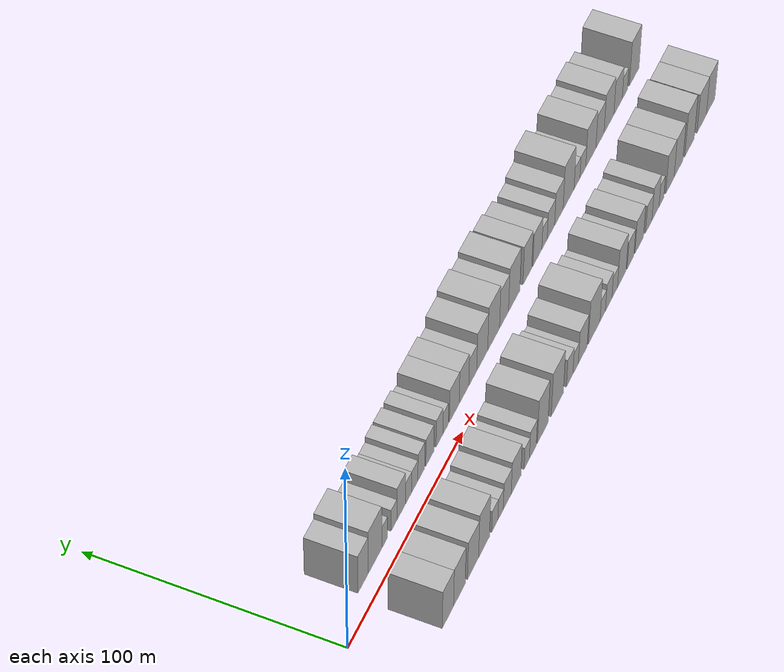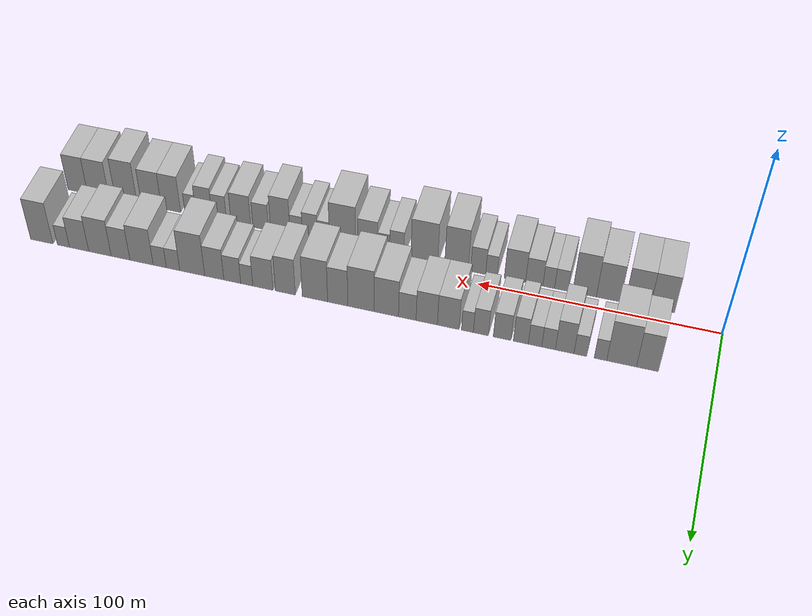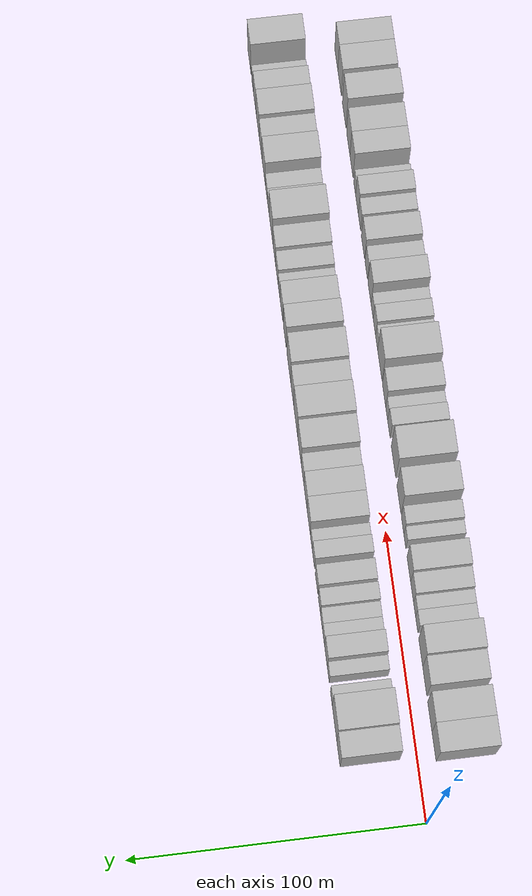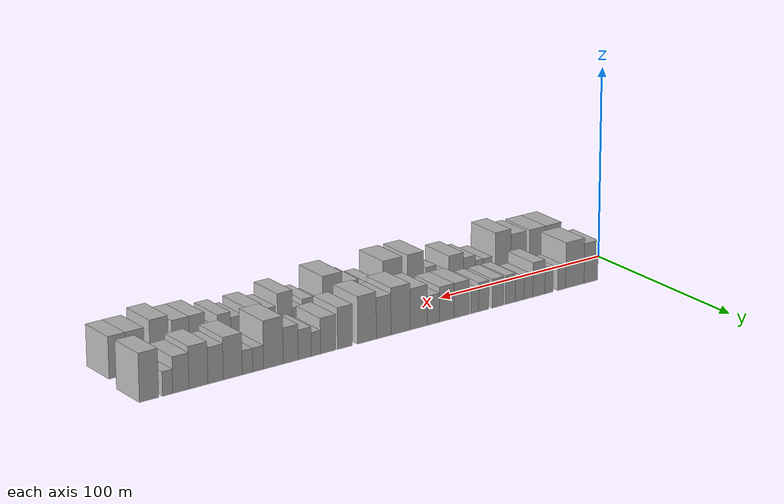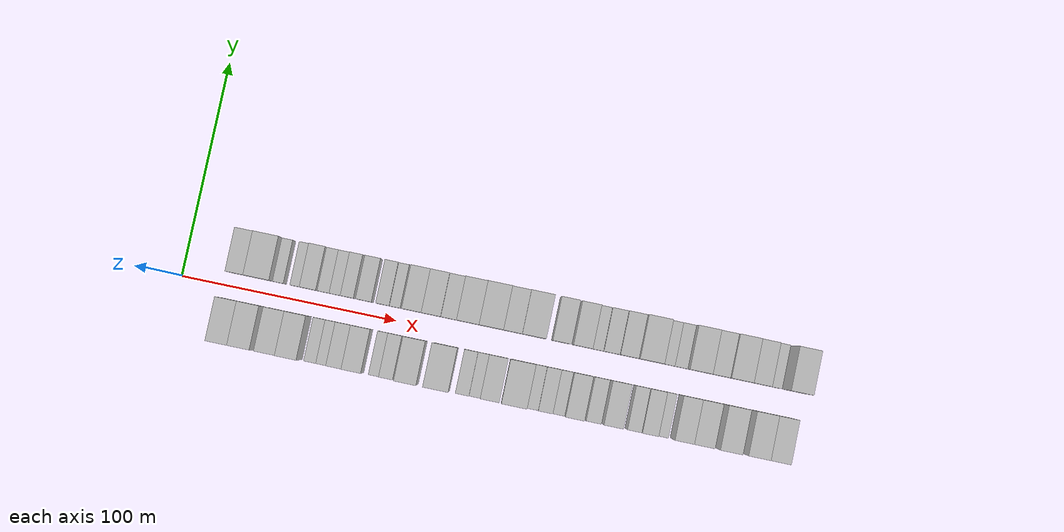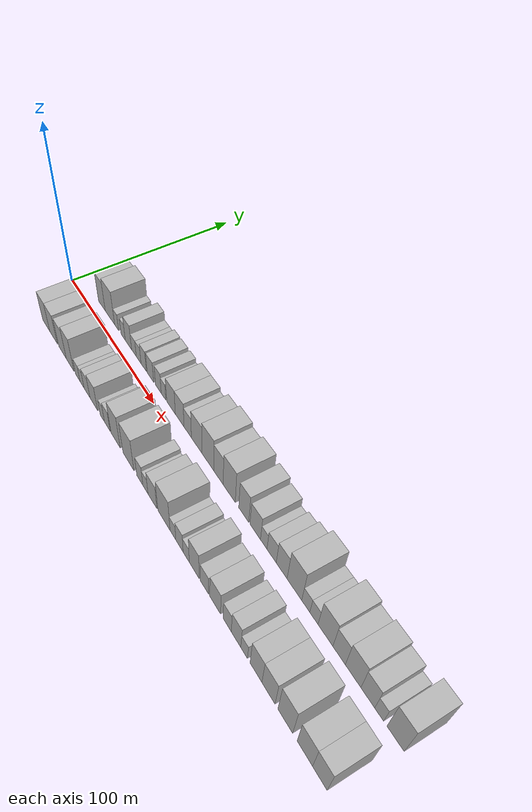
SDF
<sdf version="1.6">
 <world name="default">
  <scene>
   <sky><clouds><speed>12</speed></clouds></sky>
   <ambient>0.4 0.4 0.4 1</ambient>
   <background>0.7 0.7 0.7 1</background>
   <shadows>1</shadows>
  </scene>
  <gravity>0 0 -9.8066</gravity>
  <magnetic_field>6e-06 2.3e-05 -4.2e-05</magnetic_field>
  <physics default="0" name="default_physics" type="ode">
   <ode>
    <solver>
     <type>quick</type>
     <iters>10</iters>
     <sor>1.0</sor>
     <use_dynamic_moi_rescaling>0</use_dynamic_moi_rescaling>
    </solver>
    <constraints>
     <cfm>0</cfm>
     <erp>0.2</erp>
     <contact_max_correcting_vel>100</contact_max_correcting_vel>
     <contact_surface_layer>0.001</contact_surface_layer>
    </constraints>
   </ode>
   <max_step_size>0.004</max_step_size>
   <real_time_factor>1</real_time_factor>
   <real_time_update_rate>250</real_time_update_rate>
  </physics>
  <light name="sun" type="directional">
   <pose>0 0 10 0 0 0</pose>
   <diffuse>0.8 0.8 0.8 1</diffuse>
   <specular>0.2 0.2 0.2 1</specular>
   <attenuation>
    <range>1000</range>
    <constant>0.9</constant>
    <linear>0.01</linear>
    <quadratic>0.001</quadratic>
   </attenuation>
   <direction>-0.5 0.1 -0.9</direction>
  </light>
  <model name="building_1">
   <static>1</static>
   <pose>26.3235 16.0000 0 0.000000 0.000000 1.570796</pose>
   <link name="link">
    <pose>0 0 10.50 0 0 0</pose>
    <collision name="collision"><geometry><box><size>20.0000 8.6469 21.0000</size></box></geometry></collision>
    <visual name="visual">
     <cast_shadows>0</cast_shadows>
     <geometry><box><size>20.0000 8.6469 21.0000</size></box></geometry>
     <material>
      <script>
       <uri>model://HANNAS_wall/materials/scripts</uri>
       <uri>model://HANNAS_wall/materials/textures</uri>
       <name>vrc/HANNAS_wall</name>
      </script>
     </material>
    </visual>
   </link>
  </model>
  <model name="building_2">
   <static>1</static>
   <pose>36.5251 16.0000 0 0.000000 0.000000 1.570796</pose>
   <link name="link">
    <pose>0 0 12.00 0 0 0</pose>
    <collision name="collision"><geometry><box><size>20.0000 11.7564 24.0000</size></box></geometry></collision>
    <visual name="visual">
     <cast_shadows>0</cast_shadows>
     <geometry><box><size>20.0000 11.7564 24.0000</size></box></geometry>
     <material>
      <script>
       <uri>model://HANNAS_wall/materials/scripts</uri>
       <uri>model://HANNAS_wall/materials/textures</uri>
       <name>vrc/HANNAS_wall</name>
      </script>
     </material>
    </visual>
   </link>
  </model>
  <model name="building_3">
   <static>1</static>
   <pose>44.8879 16.0000 0 0.000000 0.000000 1.570796</pose>
   <link name="link">
    <pose>0 0 6.00 0 0 0</pose>
    <collision name="collision"><geometry><box><size>20.0000 4.9692 12.0000</size></box></geometry></collision>
    <visual name="visual">
     <cast_shadows>0</cast_shadows>
     <geometry><box><size>20.0000 4.9692 12.0000</size></box></geometry>
     <material>
      <script>
       <uri>model://HANNAS_wall/materials/scripts</uri>
       <uri>model://HANNAS_wall/materials/textures</uri>
       <name>vrc/HANNAS_wall</name>
      </script>
     </material>
    </visual>
   </link>
  </model>
  <model name="building_4">
   <static>1</static>
   <pose>52.9112 16.0000 0 0.000000 0.000000 1.570796</pose>
   <link name="link">
    <pose>0 0 6.00 0 0 0</pose>
    <collision name="collision"><geometry><box><size>20.0000 5.0774 12.0000</size></box></geometry></collision>
    <visual name="visual">
     <cast_shadows>0</cast_shadows>
     <geometry><box><size>20.0000 5.0774 12.0000</size></box></geometry>
     <material>
      <script>
       <uri>model://HANNAS_wall/materials/scripts</uri>
       <uri>model://HANNAS_wall/materials/textures</uri>
       <name>vrc/HANNAS_wall</name>
      </script>
     </material>
    </visual>
   </link>
  </model>
  <model name="building_5">
   <static>1</static>
   <pose>59.1960 16.0000 0 0.000000 0.000000 1.570796</pose>
   <link name="link">
    <pose>0 0 9.00 0 0 0</pose>
    <collision name="collision"><geometry><box><size>20.0000 7.4921 18.0000</size></box></geometry></collision>
    <visual name="visual">
     <cast_shadows>0</cast_shadows>
     <geometry><box><size>20.0000 7.4921 18.0000</size></box></geometry>
     <material>
      <script>
       <uri>model://HANNAS_wall/materials/scripts</uri>
       <uri>model://HANNAS_wall/materials/textures</uri>
       <name>vrc/HANNAS_wall</name>
      </script>
     </material>
    </visual>
   </link>
  </model>
  <model name="building_6">
   <static>1</static>
   <pose>65.6826 16.0000 0 0.000000 0.000000 1.570796</pose>
   <link name="link">
    <pose>0 0 6.00 0 0 0</pose>
    <collision name="collision"><geometry><box><size>20.0000 5.4810 12.0000</size></box></geometry></collision>
    <visual name="visual">
     <cast_shadows>0</cast_shadows>
     <geometry><box><size>20.0000 5.4810 12.0000</size></box></geometry>
     <material>
      <script>
       <uri>model://HANNAS_wall/materials/scripts</uri>
       <uri>model://HANNAS_wall/materials/textures</uri>
       <name>vrc/HANNAS_wall</name>
      </script>
     </material>
    </visual>
   </link>
  </model>
  <model name="building_7">
   <static>1</static>
   <pose>71.1312 16.0000 0 0.000000 0.000000 1.570796</pose>
   <link name="link">
    <pose>0 0 6.00 0 0 0</pose>
    <collision name="collision"><geometry><box><size>20.0000 5.4163 12.0000</size></box></geometry></collision>
    <visual name="visual">
     <cast_shadows>0</cast_shadows>
     <geometry><box><size>20.0000 5.4163 12.0000</size></box></geometry>
     <material>
      <script>
       <uri>model://HANNAS_wall/materials/scripts</uri>
       <uri>model://HANNAS_wall/materials/textures</uri>
       <name>vrc/HANNAS_wall</name>
      </script>
     </material>
    </visual>
   </link>
  </model>
  <model name="building_8">
   <static>1</static>
   <pose>76.8540 16.0000 0 0.000000 0.000000 1.570796</pose>
   <link name="link">
    <pose>0 0 7.50 0 0 0</pose>
    <collision name="collision"><geometry><box><size>20.0000 6.0293 15.0000</size></box></geometry></collision>
    <visual name="visual">
     <cast_shadows>0</cast_shadows>
     <geometry><box><size>20.0000 6.0293 15.0000</size></box></geometry>
     <material>
      <script>
       <uri>model://HANNAS_wall/materials/scripts</uri>
       <uri>model://HANNAS_wall/materials/textures</uri>
       <name>vrc/HANNAS_wall</name>
      </script>
     </material>
    </visual>
   </link>
  </model>
  <model name="building_9">
   <static>1</static>
   <pose>84.4614 16.0000 0 0.000000 0.000000 1.570796</pose>
   <link name="link">
    <pose>0 0 7.50 0 0 0</pose>
    <collision name="collision"><geometry><box><size>20.0000 7.1854 15.0000</size></box></geometry></collision>
    <visual name="visual">
     <cast_shadows>0</cast_shadows>
     <geometry><box><size>20.0000 7.1854 15.0000</size></box></geometry>
     <material>
      <script>
       <uri>model://HANNAS_wall/materials/scripts</uri>
       <uri>model://HANNAS_wall/materials/textures</uri>
       <name>vrc/HANNAS_wall</name>
      </script>
     </material>
    </visual>
   </link>
  </model>
  <model name="building_10">
   <static>1</static>
   <pose>93.1329 16.0000 0 0.000000 0.000000 1.570796</pose>
   <link name="link">
    <pose>0 0 7.50 0 0 0</pose>
    <collision name="collision"><geometry><box><size>20.0000 6.1577 15.0000</size></box></geometry></collision>
    <visual name="visual">
     <cast_shadows>0</cast_shadows>
     <geometry><box><size>20.0000 6.1577 15.0000</size></box></geometry>
     <material>
      <script>
       <uri>model://HANNAS_wall/materials/scripts</uri>
       <uri>model://HANNAS_wall/materials/textures</uri>
       <name>vrc/HANNAS_wall</name>
      </script>
     </material>
    </visual>
   </link>
  </model>
  <model name="building_11">
   <static>1</static>
   <pose>98.6537 16.0000 0 0.000000 0.000000 1.570796</pose>
   <link name="link">
    <pose>0 0 6.00 0 0 0</pose>
    <collision name="collision"><geometry><box><size>20.0000 4.8839 12.0000</size></box></geometry></collision>
    <visual name="visual">
     <cast_shadows>0</cast_shadows>
     <geometry><box><size>20.0000 4.8839 12.0000</size></box></geometry>
     <material>
      <script>
       <uri>model://HANNAS_wall/materials/scripts</uri>
       <uri>model://HANNAS_wall/materials/textures</uri>
       <name>vrc/HANNAS_wall</name>
      </script>
     </material>
    </visual>
   </link>
  </model>
  <model name="building_12">
   <static>1</static>
   <pose>106.5633 16.0000 0 0.000000 0.000000 1.570796</pose>
   <link name="link">
    <pose>0 0 9.00 0 0 0</pose>
    <collision name="collision"><geometry><box><size>20.0000 8.9352 18.0000</size></box></geometry></collision>
    <visual name="visual">
     <cast_shadows>0</cast_shadows>
     <geometry><box><size>20.0000 8.9352 18.0000</size></box></geometry>
     <material>
      <script>
       <uri>model://HANNAS_wall/materials/scripts</uri>
       <uri>model://HANNAS_wall/materials/textures</uri>
       <name>vrc/HANNAS_wall</name>
      </script>
     </material>
    </visual>
   </link>
  </model>
  <model name="building_13">
   <static>1</static>
   <pose>115.4591 16.0000 0 0.000000 0.000000 1.570796</pose>
   <link name="link">
    <pose>0 0 9.00 0 0 0</pose>
    <collision name="collision"><geometry><box><size>20.0000 8.8563 18.0000</size></box></geometry></collision>
    <visual name="visual">
     <cast_shadows>0</cast_shadows>
     <geometry><box><size>20.0000 8.8563 18.0000</size></box></geometry>
     <material>
      <script>
       <uri>model://HANNAS_wall/materials/scripts</uri>
       <uri>model://HANNAS_wall/materials/textures</uri>
       <name>vrc/HANNAS_wall</name>
      </script>
     </material>
    </visual>
   </link>
  </model>
  <model name="building_14">
   <static>1</static>
   <pose>123.5404 16.0000 0 0.000000 0.000000 1.570796</pose>
   <link name="link">
    <pose>0 0 7.50 0 0 0</pose>
    <collision name="collision"><geometry><box><size>20.0000 7.3064 15.0000</size></box></geometry></collision>
    <visual name="visual">
     <cast_shadows>0</cast_shadows>
     <geometry><box><size>20.0000 7.3064 15.0000</size></box></geometry>
     <material>
      <script>
       <uri>model://HANNAS_wall/materials/scripts</uri>
       <uri>model://HANNAS_wall/materials/textures</uri>
       <name>vrc/HANNAS_wall</name>
      </script>
     </material>
    </visual>
   </link>
  </model>
  <model name="building_15">
   <static>1</static>
   <pose>132.3197 16.0000 0 0.000000 0.000000 1.570796</pose>
   <link name="link">
    <pose>0 0 10.50 0 0 0</pose>
    <collision name="collision"><geometry><box><size>20.0000 10.2522 21.0000</size></box></geometry></collision>
    <visual name="visual">
     <cast_shadows>0</cast_shadows>
     <geometry><box><size>20.0000 10.2522 21.0000</size></box></geometry>
     <material>
      <script>
       <uri>model://HANNAS_wall/materials/scripts</uri>
       <uri>model://HANNAS_wall/materials/textures</uri>
       <name>vrc/HANNAS_wall</name>
      </script>
     </material>
    </visual>
   </link>
  </model>
  <model name="building_16">
   <static>1</static>
   <pose>143.0002 16.0000 0 0.000000 0.000000 1.570796</pose>
   <link name="link">
    <pose>0 0 12.00 0 0 0</pose>
    <collision name="collision"><geometry><box><size>20.0000 11.1087 24.0000</size></box></geometry></collision>
    <visual name="visual">
     <cast_shadows>0</cast_shadows>
     <geometry><box><size>20.0000 11.1087 24.0000</size></box></geometry>
     <material>
      <script>
       <uri>model://HANNAS_wall/materials/scripts</uri>
       <uri>model://HANNAS_wall/materials/textures</uri>
       <name>vrc/HANNAS_wall</name>
      </script>
     </material>
    </visual>
   </link>
  </model>
  <model name="building_17">
   <static>1</static>
   <pose>152.8210 16.0000 0 0.000000 0.000000 1.570796</pose>
   <link name="link">
    <pose>0 0 10.50 0 0 0</pose>
    <collision name="collision"><geometry><box><size>20.0000 8.5329 21.0000</size></box></geometry></collision>
    <visual name="visual">
     <cast_shadows>0</cast_shadows>
     <geometry><box><size>20.0000 8.5329 21.0000</size></box></geometry>
     <material>
      <script>
       <uri>model://HANNAS_wall/materials/scripts</uri>
       <uri>model://HANNAS_wall/materials/textures</uri>
       <name>vrc/HANNAS_wall</name>
      </script>
     </material>
    </visual>
   </link>
  </model>
  <model name="building_18">
   <static>1</static>
   <pose>162.4938 16.0000 0 0.000000 0.000000 1.570796</pose>
   <link name="link">
    <pose>0 0 12.00 0 0 0</pose>
    <collision name="collision"><geometry><box><size>20.0000 10.8128 24.0000</size></box></geometry></collision>
    <visual name="visual">
     <cast_shadows>0</cast_shadows>
     <geometry><box><size>20.0000 10.8128 24.0000</size></box></geometry>
     <material>
      <script>
       <uri>model://HANNAS_wall/materials/scripts</uri>
       <uri>model://HANNAS_wall/materials/textures</uri>
       <name>vrc/HANNAS_wall</name>
      </script>
     </material>
    </visual>
   </link>
  </model>
  <model name="building_19">
   <static>1</static>
   <pose>175.1848 16.0000 0 0.000000 0.000000 1.570796</pose>
   <link name="link">
    <pose>0 0 10.50 0 0 0</pose>
    <collision name="collision"><geometry><box><size>20.0000 8.5691 21.0000</size></box></geometry></collision>
    <visual name="visual">
     <cast_shadows>0</cast_shadows>
     <geometry><box><size>20.0000 8.5691 21.0000</size></box></geometry>
     <material>
      <script>
       <uri>model://HANNAS_wall/materials/scripts</uri>
       <uri>model://HANNAS_wall/materials/textures</uri>
       <name>vrc/HANNAS_wall</name>
      </script>
     </material>
    </visual>
   </link>
  </model>
  <model name="building_20">
   <static>1</static>
   <pose>184.8480 16.0000 0 0.000000 0.000000 1.570796</pose>
   <link name="link">
    <pose>0 0 9.00 0 0 0</pose>
    <collision name="collision"><geometry><box><size>20.0000 8.7574 18.0000</size></box></geometry></collision>
    <visual name="visual">
     <cast_shadows>0</cast_shadows>
     <geometry><box><size>20.0000 8.7574 18.0000</size></box></geometry>
     <material>
      <script>
       <uri>model://HANNAS_wall/materials/scripts</uri>
       <uri>model://HANNAS_wall/materials/textures</uri>
       <name>vrc/HANNAS_wall</name>
      </script>
     </material>
    </visual>
   </link>
  </model>
  <model name="building_21">
   <static>1</static>
   <pose>191.8407 16.0000 0 0.000000 0.000000 1.570796</pose>
   <link name="link">
    <pose>0 0 6.00 0 0 0</pose>
    <collision name="collision"><geometry><box><size>20.0000 5.2279 12.0000</size></box></geometry></collision>
    <visual name="visual">
     <cast_shadows>0</cast_shadows>
     <geometry><box><size>20.0000 5.2279 12.0000</size></box></geometry>
     <material>
      <script>
       <uri>model://HANNAS_wall/materials/scripts</uri>
       <uri>model://HANNAS_wall/materials/textures</uri>
       <name>vrc/HANNAS_wall</name>
      </script>
     </material>
    </visual>
   </link>
  </model>
  <model name="building_22">
   <static>1</static>
   <pose>198.1229 16.0000 0 0.000000 0.000000 1.570796</pose>
   <link name="link">
    <pose>0 0 7.50 0 0 0</pose>
    <collision name="collision"><geometry><box><size>20.0000 7.3365 15.0000</size></box></geometry></collision>
    <visual name="visual">
     <cast_shadows>0</cast_shadows>
     <geometry><box><size>20.0000 7.3365 15.0000</size></box></geometry>
     <material>
      <script>
       <uri>model://HANNAS_wall/materials/scripts</uri>
       <uri>model://HANNAS_wall/materials/textures</uri>
       <name>vrc/HANNAS_wall</name>
      </script>
     </material>
    </visual>
   </link>
  </model>
  <model name="building_23">
   <static>1</static>
   <pose>205.9871 16.0000 0 0.000000 0.000000 1.570796</pose>
   <link name="link">
    <pose>0 0 9.00 0 0 0</pose>
    <collision name="collision"><geometry><box><size>20.0000 8.3920 18.0000</size></box></geometry></collision>
    <visual name="visual">
     <cast_shadows>0</cast_shadows>
     <geometry><box><size>20.0000 8.3920 18.0000</size></box></geometry>
     <material>
      <script>
       <uri>model://HANNAS_wall/materials/scripts</uri>
       <uri>model://HANNAS_wall/materials/textures</uri>
       <name>vrc/HANNAS_wall</name>
      </script>
     </material>
    </visual>
   </link>
  </model>
  <model name="building_24">
   <static>1</static>
   <pose>215.6854 16.0000 0 0.000000 0.000000 1.570796</pose>
   <link name="link">
    <pose>0 0 12.00 0 0 0</pose>
    <collision name="collision"><geometry><box><size>20.0000 11.0047 24.0000</size></box></geometry></collision>
    <visual name="visual">
     <cast_shadows>0</cast_shadows>
     <geometry><box><size>20.0000 11.0047 24.0000</size></box></geometry>
     <material>
      <script>
       <uri>model://HANNAS_wall/materials/scripts</uri>
       <uri>model://HANNAS_wall/materials/textures</uri>
       <name>vrc/HANNAS_wall</name>
      </script>
     </material>
    </visual>
   </link>
  </model>
  <model name="building_25">
   <static>1</static>
   <pose>224.1522 16.0000 0 0.000000 0.000000 1.570796</pose>
   <link name="link">
    <pose>0 0 6.00 0 0 0</pose>
    <collision name="collision"><geometry><box><size>20.0000 5.9289 12.0000</size></box></geometry></collision>
    <visual name="visual">
     <cast_shadows>0</cast_shadows>
     <geometry><box><size>20.0000 5.9289 12.0000</size></box></geometry>
     <material>
      <script>
       <uri>model://HANNAS_wall/materials/scripts</uri>
       <uri>model://HANNAS_wall/materials/textures</uri>
       <name>vrc/HANNAS_wall</name>
      </script>
     </material>
    </visual>
   </link>
  </model>
  <model name="building_26">
   <static>1</static>
   <pose>230.0403 16.0000 0 0.000000 0.000000 1.570796</pose>
   <link name="link">
    <pose>0 0 6.00 0 0 0</pose>
    <collision name="collision"><geometry><box><size>20.0000 5.8472 12.0000</size></box></geometry></collision>
    <visual name="visual">
     <cast_shadows>0</cast_shadows>
     <geometry><box><size>20.0000 5.8472 12.0000</size></box></geometry>
     <material>
      <script>
       <uri>model://HANNAS_wall/materials/scripts</uri>
       <uri>model://HANNAS_wall/materials/textures</uri>
       <name>vrc/HANNAS_wall</name>
      </script>
     </material>
    </visual>
   </link>
  </model>
  <model name="building_27">
   <static>1</static>
   <pose>238.1439 16.0000 0 0.000000 0.000000 1.570796</pose>
   <link name="link">
    <pose>0 0 10.50 0 0 0</pose>
    <collision name="collision"><geometry><box><size>20.0000 10.3602 21.0000</size></box></geometry></collision>
    <visual name="visual">
     <cast_shadows>0</cast_shadows>
     <geometry><box><size>20.0000 10.3602 21.0000</size></box></geometry>
     <material>
      <script>
       <uri>model://HANNAS_wall/materials/scripts</uri>
       <uri>model://HANNAS_wall/materials/textures</uri>
       <name>vrc/HANNAS_wall</name>
      </script>
     </material>
    </visual>
   </link>
  </model>
  <model name="building_28">
   <static>1</static>
   <pose>247.5229 16.0000 0 0.000000 0.000000 1.570796</pose>
   <link name="link">
    <pose>0 0 9.00 0 0 0</pose>
    <collision name="collision"><geometry><box><size>20.0000 8.3978 18.0000</size></box></geometry></collision>
    <visual name="visual">
     <cast_shadows>0</cast_shadows>
     <geometry><box><size>20.0000 8.3978 18.0000</size></box></geometry>
     <material>
      <script>
       <uri>model://HANNAS_wall/materials/scripts</uri>
       <uri>model://HANNAS_wall/materials/textures</uri>
       <name>vrc/HANNAS_wall</name>
      </script>
     </material>
    </visual>
   </link>
  </model>
  <model name="building_29">
   <static>1</static>
   <pose>256.8041 16.0000 0 0.000000 0.000000 1.570796</pose>
   <link name="link">
    <pose>0 0 10.50 0 0 0</pose>
    <collision name="collision"><geometry><box><size>20.0000 10.1645 21.0000</size></box></geometry></collision>
    <visual name="visual">
     <cast_shadows>0</cast_shadows>
     <geometry><box><size>20.0000 10.1645 21.0000</size></box></geometry>
     <material>
      <script>
       <uri>model://HANNAS_wall/materials/scripts</uri>
       <uri>model://HANNAS_wall/materials/textures</uri>
       <name>vrc/HANNAS_wall</name>
      </script>
     </material>
    </visual>
   </link>
  </model>
  <model name="building_30">
   <static>1</static>
   <pose>266.2497 16.0000 0 0.000000 0.000000 1.570796</pose>
   <link name="link">
    <pose>0 0 9.00 0 0 0</pose>
    <collision name="collision"><geometry><box><size>20.0000 8.7268 18.0000</size></box></geometry></collision>
    <visual name="visual">
     <cast_shadows>0</cast_shadows>
     <geometry><box><size>20.0000 8.7268 18.0000</size></box></geometry>
     <material>
      <script>
       <uri>model://HANNAS_wall/materials/scripts</uri>
       <uri>model://HANNAS_wall/materials/textures</uri>
       <name>vrc/HANNAS_wall</name>
      </script>
     </material>
    </visual>
   </link>
  </model>
  <model name="building_31">
   <static>1</static>
   <pose>273.3557 16.0000 0 0.000000 0.000000 1.570796</pose>
   <link name="link">
    <pose>0 0 6.00 0 0 0</pose>
    <collision name="collision"><geometry><box><size>20.0000 5.4852 12.0000</size></box></geometry></collision>
    <visual name="visual">
     <cast_shadows>0</cast_shadows>
     <geometry><box><size>20.0000 5.4852 12.0000</size></box></geometry>
     <material>
      <script>
       <uri>model://HANNAS_wall/materials/scripts</uri>
       <uri>model://HANNAS_wall/materials/textures</uri>
       <name>vrc/HANNAS_wall</name>
      </script>
     </material>
    </visual>
   </link>
  </model>
  <model name="building_32">
   <static>1</static>
   <pose>283.2170 16.0000 0 0.000000 0.000000 1.570796</pose>
   <link name="link">
    <pose>0 0 12.00 0 0 0</pose>
    <collision name="collision"><geometry><box><size>20.0000 10.2374 24.0000</size></box></geometry></collision>
    <visual name="visual">
     <cast_shadows>0</cast_shadows>
     <geometry><box><size>20.0000 10.2374 24.0000</size></box></geometry>
     <material>
      <script>
       <uri>model://HANNAS_wall/materials/scripts</uri>
       <uri>model://HANNAS_wall/materials/textures</uri>
       <name>vrc/HANNAS_wall</name>
      </script>
     </material>
    </visual>
   </link>
  </model>
  <model name="building_33">
   <static>1</static>
   <pose>24.9409 -16.0000 0 0.000000 0.000000 1.570796</pose>
   <link name="link">
    <pose>0 0 10.50 0 0 0</pose>
    <collision name="collision"><geometry><box><size>20.0000 9.8819 21.0000</size></box></geometry></collision>
    <visual name="visual">
     <cast_shadows>0</cast_shadows>
     <geometry><box><size>20.0000 9.8819 21.0000</size></box></geometry>
     <material>
      <script>
       <uri>model://HANNAS_wall/materials/scripts</uri>
       <uri>model://HANNAS_wall/materials/textures</uri>
       <name>vrc/HANNAS_wall</name>
      </script>
     </material>
    </visual>
   </link>
  </model>
  <model name="building_34">
   <static>1</static>
   <pose>34.9886 -16.0000 0 0.000000 0.000000 1.570796</pose>
   <link name="link">
    <pose>0 0 10.50 0 0 0</pose>
    <collision name="collision"><geometry><box><size>20.0000 10.2135 21.0000</size></box></geometry></collision>
    <visual name="visual">
     <cast_shadows>0</cast_shadows>
     <geometry><box><size>20.0000 10.2135 21.0000</size></box></geometry>
     <material>
      <script>
       <uri>model://HANNAS_wall/materials/scripts</uri>
       <uri>model://HANNAS_wall/materials/textures</uri>
       <name>vrc/HANNAS_wall</name>
      </script>
     </material>
    </visual>
   </link>
  </model>
  <model name="building_35">
   <static>1</static>
   <pose>47.0240 -16.0000 0 0.000000 0.000000 1.570796</pose>
   <link name="link">
    <pose>0 0 10.50 0 0 0</pose>
    <collision name="collision"><geometry><box><size>20.0000 9.8575 21.0000</size></box></geometry></collision>
    <visual name="visual">
     <cast_shadows>0</cast_shadows>
     <geometry><box><size>20.0000 9.8575 21.0000</size></box></geometry>
     <material>
      <script>
       <uri>model://HANNAS_wall/materials/scripts</uri>
       <uri>model://HANNAS_wall/materials/textures</uri>
       <name>vrc/HANNAS_wall</name>
      </script>
     </material>
    </visual>
   </link>
  </model>
  <model name="building_36">
   <static>1</static>
   <pose>56.8448 -16.0000 0 0.000000 0.000000 1.570796</pose>
   <link name="link">
    <pose>0 0 12.00 0 0 0</pose>
    <collision name="collision"><geometry><box><size>20.0000 9.7840 24.0000</size></box></geometry></collision>
    <visual name="visual">
     <cast_shadows>0</cast_shadows>
     <geometry><box><size>20.0000 9.7840 24.0000</size></box></geometry>
     <material>
      <script>
       <uri>model://HANNAS_wall/materials/scripts</uri>
       <uri>model://HANNAS_wall/materials/textures</uri>
       <name>vrc/HANNAS_wall</name>
      </script>
     </material>
    </visual>
   </link>
  </model>
  <model name="building_37">
   <static>1</static>
   <pose>66.5058 -16.0000 0 0.000000 0.000000 1.570796</pose>
   <link name="link">
    <pose>0 0 6.00 0 0 0</pose>
    <collision name="collision"><geometry><box><size>20.0000 5.5380 12.0000</size></box></geometry></collision>
    <visual name="visual">
     <cast_shadows>0</cast_shadows>
     <geometry><box><size>20.0000 5.5380 12.0000</size></box></geometry>
     <material>
      <script>
       <uri>model://HANNAS_wall/materials/scripts</uri>
       <uri>model://HANNAS_wall/materials/textures</uri>
       <name>vrc/HANNAS_wall</name>
      </script>
     </material>
    </visual>
   </link>
  </model>
  <model name="building_38">
   <static>1</static>
   <pose>71.7222 -16.0000 0 0.000000 0.000000 1.570796</pose>
   <link name="link">
    <pose>0 0 6.00 0 0 0</pose>
    <collision name="collision"><geometry><box><size>20.0000 4.8949 12.0000</size></box></geometry></collision>
    <visual name="visual">
     <cast_shadows>0</cast_shadows>
     <geometry><box><size>20.0000 4.8949 12.0000</size></box></geometry>
     <material>
      <script>
       <uri>model://HANNAS_wall/materials/scripts</uri>
       <uri>model://HANNAS_wall/materials/textures</uri>
       <name>vrc/HANNAS_wall</name>
      </script>
     </material>
    </visual>
   </link>
  </model>
  <model name="building_39">
   <static>1</static>
   <pose>77.7984 -16.0000 0 0.000000 0.000000 1.570796</pose>
   <link name="link">
    <pose>0 0 7.50 0 0 0</pose>
    <collision name="collision"><geometry><box><size>20.0000 7.2575 15.0000</size></box></geometry></collision>
    <visual name="visual">
     <cast_shadows>0</cast_shadows>
     <geometry><box><size>20.0000 7.2575 15.0000</size></box></geometry>
     <material>
      <script>
       <uri>model://HANNAS_wall/materials/scripts</uri>
       <uri>model://HANNAS_wall/materials/textures</uri>
       <name>vrc/HANNAS_wall</name>
      </script>
     </material>
    </visual>
   </link>
  </model>
  <model name="building_40">
   <static>1</static>
   <pose>85.9013 -16.0000 0 0.000000 0.000000 1.570796</pose>
   <link name="link">
    <pose>0 0 9.00 0 0 0</pose>
    <collision name="collision"><geometry><box><size>20.0000 8.9483 18.0000</size></box></geometry></collision>
    <visual name="visual">
     <cast_shadows>0</cast_shadows>
     <geometry><box><size>20.0000 8.9483 18.0000</size></box></geometry>
     <material>
      <script>
       <uri>model://HANNAS_wall/materials/scripts</uri>
       <uri>model://HANNAS_wall/materials/textures</uri>
       <name>vrc/HANNAS_wall</name>
      </script>
     </material>
    </visual>
   </link>
  </model>
  <model name="building_41">
   <static>1</static>
   <pose>95.8211 -16.0000 0 0.000000 0.000000 1.570796</pose>
   <link name="link">
    <pose>0 0 6.00 0 0 0</pose>
    <collision name="collision"><geometry><box><size>20.0000 4.8913 12.0000</size></box></geometry></collision>
    <visual name="visual">
     <cast_shadows>0</cast_shadows>
     <geometry><box><size>20.0000 4.8913 12.0000</size></box></geometry>
     <material>
      <script>
       <uri>model://HANNAS_wall/materials/scripts</uri>
       <uri>model://HANNAS_wall/materials/textures</uri>
       <name>vrc/HANNAS_wall</name>
      </script>
     </material>
    </visual>
   </link>
  </model>
  <model name="building_42">
   <static>1</static>
   <pose>101.4853 -16.0000 0 0.000000 0.000000 1.570796</pose>
   <link name="link">
    <pose>0 0 7.50 0 0 0</pose>
    <collision name="collision"><geometry><box><size>20.0000 6.4372 15.0000</size></box></geometry></collision>
    <visual name="visual">
     <cast_shadows>0</cast_shadows>
     <geometry><box><size>20.0000 6.4372 15.0000</size></box></geometry>
     <material>
      <script>
       <uri>model://HANNAS_wall/materials/scripts</uri>
       <uri>model://HANNAS_wall/materials/textures</uri>
       <name>vrc/HANNAS_wall</name>
      </script>
     </material>
    </visual>
   </link>
  </model>
  <model name="building_43">
   <static>1</static>
   <pose>110.7353 -16.0000 0 0.000000 0.000000 1.570796</pose>
   <link name="link">
    <pose>0 0 12.00 0 0 0</pose>
    <collision name="collision"><geometry><box><size>20.0000 10.0628 24.0000</size></box></geometry></collision>
    <visual name="visual">
     <cast_shadows>0</cast_shadows>
     <geometry><box><size>20.0000 10.0628 24.0000</size></box></geometry>
     <material>
      <script>
       <uri>model://HANNAS_wall/materials/scripts</uri>
       <uri>model://HANNAS_wall/materials/textures</uri>
       <name>vrc/HANNAS_wall</name>
      </script>
     </material>
    </visual>
   </link>
  </model>
  <model name="building_44">
   <static>1</static>
   <pose>124.5338 -16.0000 0 0.000000 0.000000 1.570796</pose>
   <link name="link">
    <pose>0 0 12.00 0 0 0</pose>
    <collision name="collision"><geometry><box><size>20.0000 11.5342 24.0000</size></box></geometry></collision>
    <visual name="visual">
     <cast_shadows>0</cast_shadows>
     <geometry><box><size>20.0000 11.5342 24.0000</size></box></geometry>
     <material>
      <script>
       <uri>model://HANNAS_wall/materials/scripts</uri>
       <uri>model://HANNAS_wall/materials/textures</uri>
       <name>vrc/HANNAS_wall</name>
      </script>
     </material>
    </visual>
   </link>
  </model>
  <model name="building_45">
   <static>1</static>
   <pose>136.4137 -16.0000 0 0.000000 0.000000 1.570796</pose>
   <link name="link">
    <pose>0 0 7.50 0 0 0</pose>
    <collision name="collision"><geometry><box><size>20.0000 6.2255 15.0000</size></box></geometry></collision>
    <visual name="visual">
     <cast_shadows>0</cast_shadows>
     <geometry><box><size>20.0000 6.2255 15.0000</size></box></geometry>
     <material>
      <script>
       <uri>model://HANNAS_wall/materials/scripts</uri>
       <uri>model://HANNAS_wall/materials/textures</uri>
       <name>vrc/HANNAS_wall</name>
      </script>
     </material>
    </visual>
   </link>
  </model>
  <model name="building_46">
   <static>1</static>
   <pose>142.1039 -16.0000 0 0.000000 0.000000 1.570796</pose>
   <link name="link">
    <pose>0 0 6.00 0 0 0</pose>
    <collision name="collision"><geometry><box><size>20.0000 5.1551 12.0000</size></box></geometry></collision>
    <visual name="visual">
     <cast_shadows>0</cast_shadows>
     <geometry><box><size>20.0000 5.1551 12.0000</size></box></geometry>
     <material>
      <script>
       <uri>model://HANNAS_wall/materials/scripts</uri>
       <uri>model://HANNAS_wall/materials/textures</uri>
       <name>vrc/HANNAS_wall</name>
      </script>
     </material>
    </visual>
   </link>
  </model>
  <model name="building_47">
   <static>1</static>
   <pose>149.0184 -16.0000 0 0.000000 0.000000 1.570796</pose>
   <link name="link">
    <pose>0 0 9.00 0 0 0</pose>
    <collision name="collision"><geometry><box><size>20.0000 8.6738 18.0000</size></box></geometry></collision>
    <visual name="visual">
     <cast_shadows>0</cast_shadows>
     <geometry><box><size>20.0000 8.6738 18.0000</size></box></geometry>
     <material>
      <script>
       <uri>model://HANNAS_wall/materials/scripts</uri>
       <uri>model://HANNAS_wall/materials/textures</uri>
       <name>vrc/HANNAS_wall</name>
      </script>
     </material>
    </visual>
   </link>
  </model>
  <model name="building_48">
   <static>1</static>
   <pose>160.1020 -16.0000 0 0.000000 0.000000 1.570796</pose>
   <link name="link">
    <pose>0 0 12.00 0 0 0</pose>
    <collision name="collision"><geometry><box><size>20.0000 11.4935 24.0000</size></box></geometry></collision>
    <visual name="visual">
     <cast_shadows>0</cast_shadows>
     <geometry><box><size>20.0000 11.4935 24.0000</size></box></geometry>
     <material>
      <script>
       <uri>model://HANNAS_wall/materials/scripts</uri>
       <uri>model://HANNAS_wall/materials/textures</uri>
       <name>vrc/HANNAS_wall</name>
      </script>
     </material>
    </visual>
   </link>
  </model>
  <model name="building_49">
   <static>1</static>
   <pose>168.5266 -16.0000 0 0.000000 0.000000 1.570796</pose>
   <link name="link">
    <pose>0 0 6.00 0 0 0</pose>
    <collision name="collision"><geometry><box><size>20.0000 5.3558 12.0000</size></box></geometry></collision>
    <visual name="visual">
     <cast_shadows>0</cast_shadows>
     <geometry><box><size>20.0000 5.3558 12.0000</size></box></geometry>
     <material>
      <script>
       <uri>model://HANNAS_wall/materials/scripts</uri>
       <uri>model://HANNAS_wall/materials/textures</uri>
       <name>vrc/HANNAS_wall</name>
      </script>
     </material>
    </visual>
   </link>
  </model>
  <model name="building_50">
   <static>1</static>
   <pose>174.4932 -16.0000 0 0.000000 0.000000 1.570796</pose>
   <link name="link">
    <pose>0 0 7.50 0 0 0</pose>
    <collision name="collision"><geometry><box><size>20.0000 6.5775 15.0000</size></box></geometry></collision>
    <visual name="visual">
     <cast_shadows>0</cast_shadows>
     <geometry><box><size>20.0000 6.5775 15.0000</size></box></geometry>
     <material>
      <script>
       <uri>model://HANNAS_wall/materials/scripts</uri>
       <uri>model://HANNAS_wall/materials/textures</uri>
       <name>vrc/HANNAS_wall</name>
      </script>
     </material>
    </visual>
   </link>
  </model>
  <model name="building_51">
   <static>1</static>
   <pose>180.5383 -16.0000 0 0.000000 0.000000 1.570796</pose>
   <link name="link">
    <pose>0 0 6.00 0 0 0</pose>
    <collision name="collision"><geometry><box><size>20.0000 5.5127 12.0000</size></box></geometry></collision>
    <visual name="visual">
     <cast_shadows>0</cast_shadows>
     <geometry><box><size>20.0000 5.5127 12.0000</size></box></geometry>
     <material>
      <script>
       <uri>model://HANNAS_wall/materials/scripts</uri>
       <uri>model://HANNAS_wall/materials/textures</uri>
       <name>vrc/HANNAS_wall</name>
      </script>
     </material>
    </visual>
   </link>
  </model>
  <model name="building_52">
   <static>1</static>
   <pose>187.6000 -16.0000 0 0.000000 0.000000 1.570796</pose>
   <link name="link">
    <pose>0 0 10.50 0 0 0</pose>
    <collision name="collision"><geometry><box><size>20.0000 8.6107 21.0000</size></box></geometry></collision>
    <visual name="visual">
     <cast_shadows>0</cast_shadows>
     <geometry><box><size>20.0000 8.6107 21.0000</size></box></geometry>
     <material>
      <script>
       <uri>model://HANNAS_wall/materials/scripts</uri>
       <uri>model://HANNAS_wall/materials/textures</uri>
       <name>vrc/HANNAS_wall</name>
      </script>
     </material>
    </visual>
   </link>
  </model>
  <model name="building_53">
   <static>1</static>
   <pose>196.3799 -16.0000 0 0.000000 0.000000 1.570796</pose>
   <link name="link">
    <pose>0 0 7.50 0 0 0</pose>
    <collision name="collision"><geometry><box><size>20.0000 6.9492 15.0000</size></box></geometry></collision>
    <visual name="visual">
     <cast_shadows>0</cast_shadows>
     <geometry><box><size>20.0000 6.9492 15.0000</size></box></geometry>
     <material>
      <script>
       <uri>model://HANNAS_wall/materials/scripts</uri>
       <uri>model://HANNAS_wall/materials/textures</uri>
       <name>vrc/HANNAS_wall</name>
      </script>
     </material>
    </visual>
   </link>
  </model>
  <model name="building_54">
   <static>1</static>
   <pose>205.2830 -16.0000 0 0.000000 0.000000 1.570796</pose>
   <link name="link">
    <pose>0 0 9.00 0 0 0</pose>
    <collision name="collision"><geometry><box><size>20.0000 8.8570 18.0000</size></box></geometry></collision>
    <visual name="visual">
     <cast_shadows>0</cast_shadows>
     <geometry><box><size>20.0000 8.8570 18.0000</size></box></geometry>
     <material>
      <script>
       <uri>model://HANNAS_wall/materials/scripts</uri>
       <uri>model://HANNAS_wall/materials/textures</uri>
       <name>vrc/HANNAS_wall</name>
      </script>
     </material>
    </visual>
   </link>
  </model>
  <model name="building_55">
   <static>1</static>
   <pose>214.9843 -16.0000 0 0.000000 0.000000 1.570796</pose>
   <link name="link">
    <pose>0 0 7.50 0 0 0</pose>
    <collision name="collision"><geometry><box><size>20.0000 6.5457 15.0000</size></box></geometry></collision>
    <visual name="visual">
     <cast_shadows>0</cast_shadows>
     <geometry><box><size>20.0000 6.5457 15.0000</size></box></geometry>
     <material>
      <script>
       <uri>model://HANNAS_wall/materials/scripts</uri>
       <uri>model://HANNAS_wall/materials/textures</uri>
       <name>vrc/HANNAS_wall</name>
      </script>
     </material>
    </visual>
   </link>
  </model>
  <model name="building_56">
   <static>1</static>
   <pose>221.9484 -16.0000 0 0.000000 0.000000 1.570796</pose>
   <link name="link">
    <pose>0 0 9.00 0 0 0</pose>
    <collision name="collision"><geometry><box><size>20.0000 7.3825 18.0000</size></box></geometry></collision>
    <visual name="visual">
     <cast_shadows>0</cast_shadows>
     <geometry><box><size>20.0000 7.3825 18.0000</size></box></geometry>
     <material>
      <script>
       <uri>model://HANNAS_wall/materials/scripts</uri>
       <uri>model://HANNAS_wall/materials/textures</uri>
       <name>vrc/HANNAS_wall</name>
      </script>
     </material>
    </visual>
   </link>
  </model>
  <model name="building_57">
   <static>1</static>
   <pose>228.1563 -16.0000 0 0.000000 0.000000 1.570796</pose>
   <link name="link">
    <pose>0 0 6.00 0 0 0</pose>
    <collision name="collision"><geometry><box><size>20.0000 5.0333 12.0000</size></box></geometry></collision>
    <visual name="visual">
     <cast_shadows>0</cast_shadows>
     <geometry><box><size>20.0000 5.0333 12.0000</size></box></geometry>
     <material>
      <script>
       <uri>model://HANNAS_wall/materials/scripts</uri>
       <uri>model://HANNAS_wall/materials/textures</uri>
       <name>vrc/HANNAS_wall</name>
      </script>
     </material>
    </visual>
   </link>
  </model>
  <model name="building_58">
   <static>1</static>
   <pose>237.0471 -16.0000 0 0.000000 0.000000 1.570796</pose>
   <link name="link">
    <pose>0 0 10.50 0 0 0</pose>
    <collision name="collision"><geometry><box><size>20.0000 8.7481 21.0000</size></box></geometry></collision>
    <visual name="visual">
     <cast_shadows>0</cast_shadows>
     <geometry><box><size>20.0000 8.7481 21.0000</size></box></geometry>
     <material>
      <script>
       <uri>model://HANNAS_wall/materials/scripts</uri>
       <uri>model://HANNAS_wall/materials/textures</uri>
       <name>vrc/HANNAS_wall</name>
      </script>
     </material>
    </visual>
   </link>
  </model>
  <model name="building_59">
   <static>1</static>
   <pose>246.0774 -16.0000 0 0.000000 0.000000 1.570796</pose>
   <link name="link">
    <pose>0 0 10.50 0 0 0</pose>
    <collision name="collision"><geometry><box><size>20.0000 9.3124 21.0000</size></box></geometry></collision>
    <visual name="visual">
     <cast_shadows>0</cast_shadows>
     <geometry><box><size>20.0000 9.3124 21.0000</size></box></geometry>
     <material>
      <script>
       <uri>model://HANNAS_wall/materials/scripts</uri>
       <uri>model://HANNAS_wall/materials/textures</uri>
       <name>vrc/HANNAS_wall</name>
      </script>
     </material>
    </visual>
   </link>
  </model>
  <model name="building_60">
   <static>1</static>
   <pose>257.7813 -16.0000 0 0.000000 0.000000 1.570796</pose>
   <link name="link">
    <pose>0 0 12.00 0 0 0</pose>
    <collision name="collision"><geometry><box><size>20.0000 10.0954 24.0000</size></box></geometry></collision>
    <visual name="visual">
     <cast_shadows>0</cast_shadows>
     <geometry><box><size>20.0000 10.0954 24.0000</size></box></geometry>
     <material>
      <script>
       <uri>model://HANNAS_wall/materials/scripts</uri>
       <uri>model://HANNAS_wall/materials/textures</uri>
       <name>vrc/HANNAS_wall</name>
      </script>
     </material>
    </visual>
   </link>
  </model>
  <model name="building_61">
   <static>1</static>
   <pose>270.8501 -16.0000 0 0.000000 0.000000 1.570796</pose>
   <link name="link">
    <pose>0 0 10.50 0 0 0</pose>
    <collision name="collision"><geometry><box><size>20.0000 10.0423 21.0000</size></box></geometry></collision>
    <visual name="visual">
     <cast_shadows>0</cast_shadows>
     <geometry><box><size>20.0000 10.0423 21.0000</size></box></geometry>
     <material>
      <script>
       <uri>model://HANNAS_wall/materials/scripts</uri>
       <uri>model://HANNAS_wall/materials/textures</uri>
       <name>vrc/HANNAS_wall</name>
      </script>
     </material>
    </visual>
   </link>
  </model>
  <model name="building_62">
   <static>1</static>
   <pose>280.4488 -16.0000 0 0.000000 0.000000 1.570796</pose>
   <link name="link">
    <pose>0 0 10.50 0 0 0</pose>
    <collision name="collision"><geometry><box><size>20.0000 9.1551 21.0000</size></box></geometry></collision>
    <visual name="visual">
     <cast_shadows>0</cast_shadows>
     <geometry><box><size>20.0000 9.1551 21.0000</size></box></geometry>
     <material>
      <script>
       <uri>model://HANNAS_wall/materials/scripts</uri>
       <uri>model://HANNAS_wall/materials/textures</uri>
       <name>vrc/HANNAS_wall</name>
      </script>
     </material>
    </visual>
   </link>
  </model>
 </world>
</sdf>
